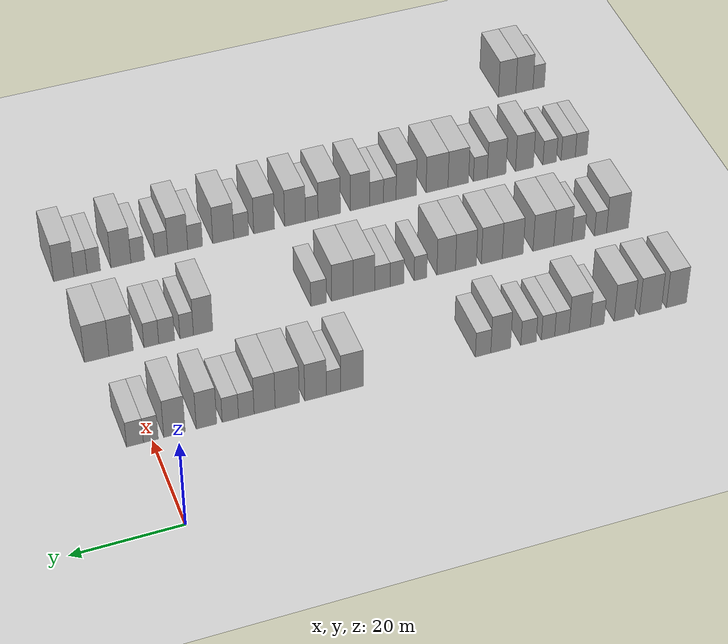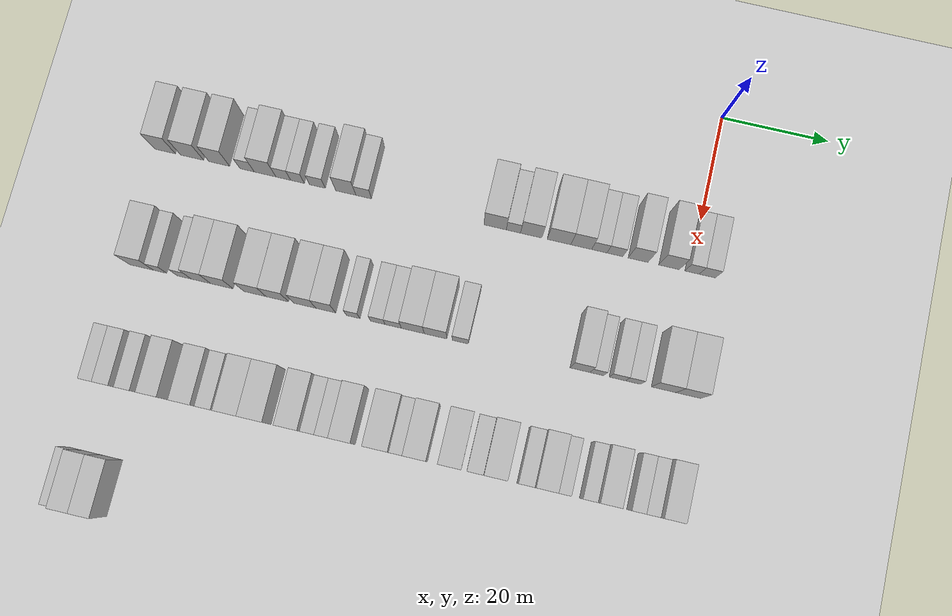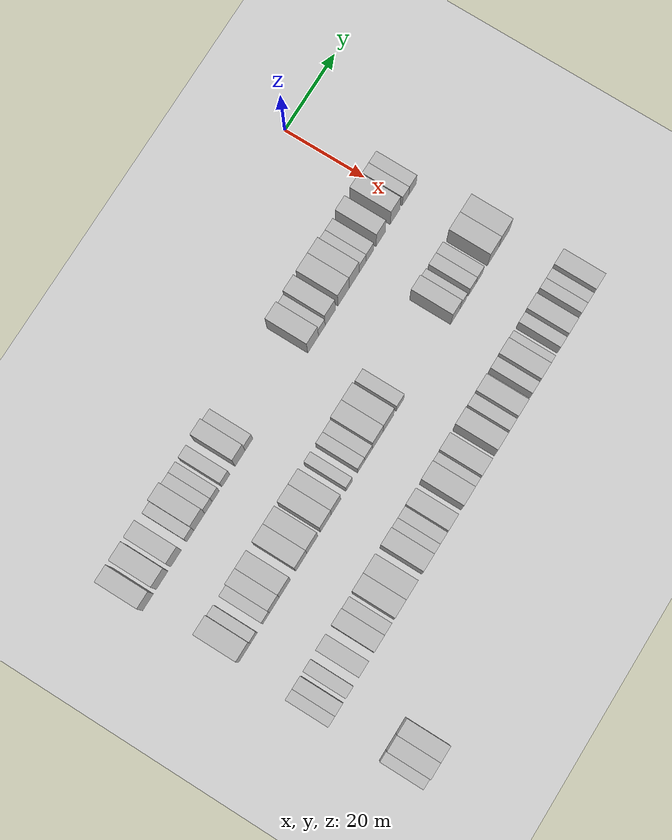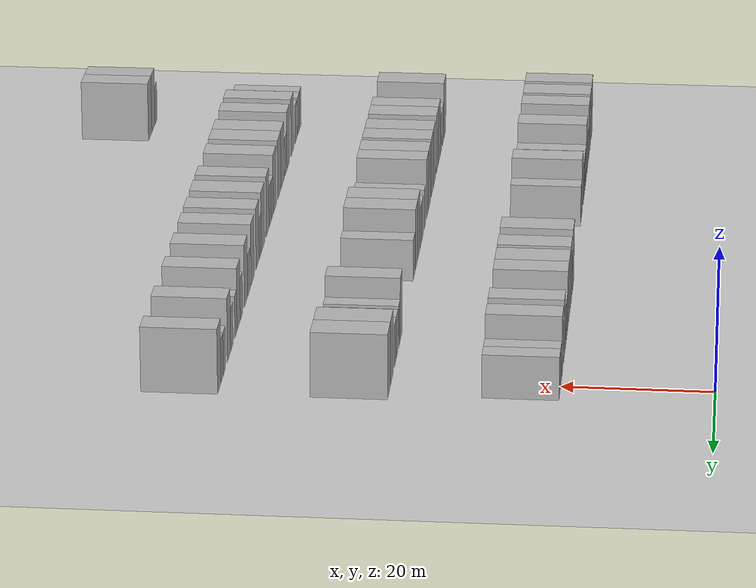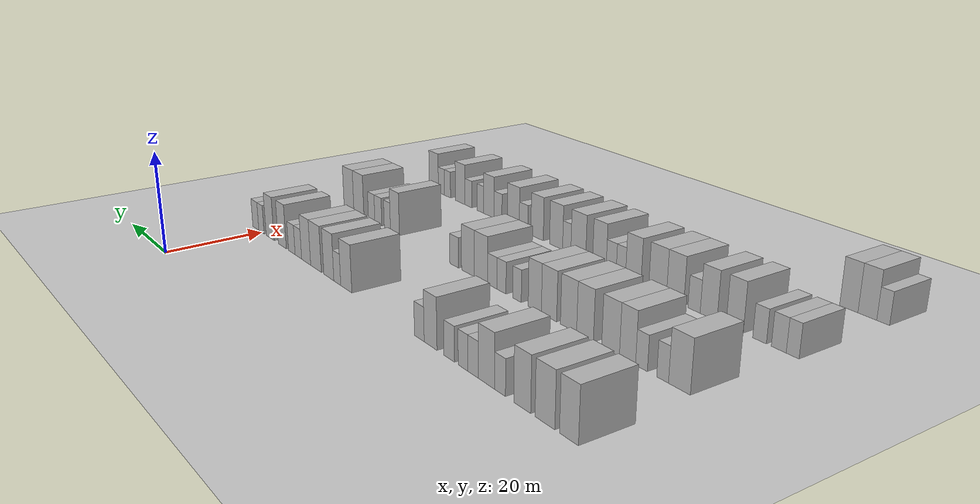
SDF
<sdf version="1.6">
 <world name="default">
  <include><name>ground_plane_1</name><uri>model://HANNAS_ground_plane</uri></include>
  <model name="building_73">
   <static>1</static>
   <pose>25.0000 -98.9124 0 0.000000 0.000000 0.000000</pose>
   <link name="link">
    <pose>0 0 4.50 0 0 0</pose>
    <collision name="collision"><geometry><box><size>10.0000 3.9941 9.0000</size></box></geometry></collision>
    <visual name="visual">
     <cast_shadows>0</cast_shadows>
     <geometry><box><size>10.0000 3.9941 9.0000</size></box></geometry>
     <material>
      <script>
       <uri>model://HANNAS_wall/materials/scripts</uri>
       <uri>model://HANNAS_wall/materials/textures</uri>
       <name>vrc/HANNAS_wall</name>
      </script>
     </material>
    </visual>
   </link>
  </model>
  <model name="building_74">
   <static>1</static>
   <pose>25.0000 -93.7231 0 0.000000 0.000000 0.000000</pose>
   <link name="link">
    <pose>0 0 4.50 0 0 0</pose>
    <collision name="collision"><geometry><box><size>10.0000 4.3844 9.0000</size></box></geometry></collision>
    <visual name="visual">
     <cast_shadows>0</cast_shadows>
     <geometry><box><size>10.0000 4.3844 9.0000</size></box></geometry>
     <material>
      <script>
       <uri>model://HANNAS_wall/materials/scripts</uri>
       <uri>model://HANNAS_wall/materials/textures</uri>
       <name>vrc/HANNAS_wall</name>
      </script>
     </material>
    </visual>
   </link>
  </model>
  <model name="building_75">
   <static>1</static>
   <pose>25.0000 -88.5470 0 0.000000 0.000000 0.000000</pose>
   <link name="link">
    <pose>0 0 4.50 0 0 0</pose>
    <collision name="collision"><geometry><box><size>10.0000 3.9678 9.0000</size></box></geometry></collision>
    <visual name="visual">
     <cast_shadows>0</cast_shadows>
     <geometry><box><size>10.0000 3.9678 9.0000</size></box></geometry>
     <material>
      <script>
       <uri>model://HANNAS_wall/materials/scripts</uri>
       <uri>model://HANNAS_wall/materials/textures</uri>
       <name>vrc/HANNAS_wall</name>
      </script>
     </material>
    </visual>
   </link>
  </model>
  <model name="building_76">
   <static>1</static>
   <pose>25.0000 -83.2048 0 0.000000 0.000000 0.000000</pose>
   <link name="link">
    <pose>0 0 3.00 0 0 0</pose>
    <collision name="collision"><geometry><box><size>10.0000 2.7165 6.0000</size></box></geometry></collision>
    <visual name="visual">
     <cast_shadows>0</cast_shadows>
     <geometry><box><size>10.0000 2.7165 6.0000</size></box></geometry>
     <material>
      <script>
       <uri>model://HANNAS_wall/materials/scripts</uri>
       <uri>model://HANNAS_wall/materials/textures</uri>
       <name>vrc/HANNAS_wall</name>
      </script>
     </material>
    </visual>
   </link>
  </model>
  <model name="building_77">
   <static>1</static>
   <pose>25.0000 -79.7833 0 0.000000 0.000000 0.000000</pose>
   <link name="link">
    <pose>0 0 4.50 0 0 0</pose>
    <collision name="collision"><geometry><box><size>10.0000 4.1265 9.0000</size></box></geometry></collision>
    <visual name="visual">
     <cast_shadows>0</cast_shadows>
     <geometry><box><size>10.0000 4.1265 9.0000</size></box></geometry>
     <material>
      <script>
       <uri>model://HANNAS_wall/materials/scripts</uri>
       <uri>model://HANNAS_wall/materials/textures</uri>
       <name>vrc/HANNAS_wall</name>
      </script>
     </material>
    </visual>
   </link>
  </model>
  <model name="building_78">
   <static>1</static>
   <pose>25.0000 -76.3135 0 0.000000 0.000000 0.000000</pose>
   <link name="link">
    <pose>0 0 3.00 0 0 0</pose>
    <collision name="collision"><geometry><box><size>10.0000 2.8133 6.0000</size></box></geometry></collision>
    <visual name="visual">
     <cast_shadows>0</cast_shadows>
     <geometry><box><size>10.0000 2.8133 6.0000</size></box></geometry>
     <material>
      <script>
       <uri>model://HANNAS_wall/materials/scripts</uri>
       <uri>model://HANNAS_wall/materials/textures</uri>
       <name>vrc/HANNAS_wall</name>
      </script>
     </material>
    </visual>
   </link>
  </model>
  <model name="building_79">
   <static>1</static>
   <pose>25.0000 -73.6182 0 0.000000 0.000000 0.000000</pose>
   <link name="link">
    <pose>0 0 3.00 0 0 0</pose>
    <collision name="collision"><geometry><box><size>10.0000 2.5771 6.0000</size></box></geometry></collision>
    <visual name="visual">
     <cast_shadows>0</cast_shadows>
     <geometry><box><size>10.0000 2.5771 6.0000</size></box></geometry>
     <material>
      <script>
       <uri>model://HANNAS_wall/materials/scripts</uri>
       <uri>model://HANNAS_wall/materials/textures</uri>
       <name>vrc/HANNAS_wall</name>
      </script>
     </material>
    </visual>
   </link>
  </model>
  <model name="building_80">
   <static>1</static>
   <pose>25.0000 -69.8421 0 0.000000 0.000000 0.000000</pose>
   <link name="link">
    <pose>0 0 3.00 0 0 0</pose>
    <collision name="collision"><geometry><box><size>10.0000 2.9751 6.0000</size></box></geometry></collision>
    <visual name="visual">
     <cast_shadows>0</cast_shadows>
     <geometry><box><size>10.0000 2.9751 6.0000</size></box></geometry>
     <material>
      <script>
       <uri>model://HANNAS_wall/materials/scripts</uri>
       <uri>model://HANNAS_wall/materials/textures</uri>
       <name>vrc/HANNAS_wall</name>
      </script>
     </material>
    </visual>
   </link>
  </model>
  <model name="building_81">
   <static>1</static>
   <pose>25.0000 -64.4613 0 0.000000 0.000000 0.000000</pose>
   <link name="link">
    <pose>0 0 4.50 0 0 0</pose>
    <collision name="collision"><geometry><box><size>10.0000 3.7867 9.0000</size></box></geometry></collision>
    <visual name="visual">
     <cast_shadows>0</cast_shadows>
     <geometry><box><size>10.0000 3.7867 9.0000</size></box></geometry>
     <material>
      <script>
       <uri>model://HANNAS_wall/materials/scripts</uri>
       <uri>model://HANNAS_wall/materials/textures</uri>
       <name>vrc/HANNAS_wall</name>
      </script>
     </material>
    </visual>
   </link>
  </model>
  <model name="building_82">
   <static>1</static>
   <pose>25.0000 -61.0921 0 0.000000 0.000000 0.000000</pose>
   <link name="link">
    <pose>0 0 3.00 0 0 0</pose>
    <collision name="collision"><geometry><box><size>10.0000 2.9517 6.0000</size></box></geometry></collision>
    <visual name="visual">
     <cast_shadows>0</cast_shadows>
     <geometry><box><size>10.0000 2.9517 6.0000</size></box></geometry>
     <material>
      <script>
       <uri>model://HANNAS_wall/materials/scripts</uri>
       <uri>model://HANNAS_wall/materials/textures</uri>
       <name>vrc/HANNAS_wall</name>
      </script>
     </material>
    </visual>
   </link>
  </model>
  <model name="building_83">
   <static>1</static>
   <pose>25.0000 -36.3473 0 0.000000 0.000000 0.000000</pose>
   <link name="link">
    <pose>0 0 4.50 0 0 0</pose>
    <collision name="collision"><geometry><box><size>10.0000 4.1793 9.0000</size></box></geometry></collision>
    <visual name="visual">
     <cast_shadows>0</cast_shadows>
     <geometry><box><size>10.0000 4.1793 9.0000</size></box></geometry>
     <material>
      <script>
       <uri>model://HANNAS_wall/materials/scripts</uri>
       <uri>model://HANNAS_wall/materials/textures</uri>
       <name>vrc/HANNAS_wall</name>
      </script>
     </material>
    </visual>
   </link>
  </model>
  <model name="building_84">
   <static>1</static>
   <pose>25.0000 -32.9336 0 0.000000 0.000000 0.000000</pose>
   <link name="link">
    <pose>0 0 3.00 0 0 0</pose>
    <collision name="collision"><geometry><box><size>10.0000 2.6480 6.0000</size></box></geometry></collision>
    <visual name="visual">
     <cast_shadows>0</cast_shadows>
     <geometry><box><size>10.0000 2.6480 6.0000</size></box></geometry>
     <material>
      <script>
       <uri>model://HANNAS_wall/materials/scripts</uri>
       <uri>model://HANNAS_wall/materials/textures</uri>
       <name>vrc/HANNAS_wall</name>
      </script>
     </material>
    </visual>
   </link>
  </model>
  <model name="building_85">
   <static>1</static>
   <pose>25.0000 -29.6168 0 0.000000 0.000000 0.000000</pose>
   <link name="link">
    <pose>0 0 4.50 0 0 0</pose>
    <collision name="collision"><geometry><box><size>10.0000 3.9856 9.0000</size></box></geometry></collision>
    <visual name="visual">
     <cast_shadows>0</cast_shadows>
     <geometry><box><size>10.0000 3.9856 9.0000</size></box></geometry>
     <material>
      <script>
       <uri>model://HANNAS_wall/materials/scripts</uri>
       <uri>model://HANNAS_wall/materials/textures</uri>
       <name>vrc/HANNAS_wall</name>
      </script>
     </material>
    </visual>
   </link>
  </model>
  <model name="building_86">
   <static>1</static>
   <pose>25.0000 -24.4102 0 0.000000 0.000000 0.000000</pose>
   <link name="link">
    <pose>0 0 4.50 0 0 0</pose>
    <collision name="collision"><geometry><box><size>10.0000 4.4278 9.0000</size></box></geometry></collision>
    <visual name="visual">
     <cast_shadows>0</cast_shadows>
     <geometry><box><size>10.0000 4.4278 9.0000</size></box></geometry>
     <material>
      <script>
       <uri>model://HANNAS_wall/materials/scripts</uri>
       <uri>model://HANNAS_wall/materials/textures</uri>
       <name>vrc/HANNAS_wall</name>
      </script>
     </material>
    </visual>
   </link>
  </model>
  <model name="building_87">
   <static>1</static>
   <pose>25.0000 -20.2713 0 0.000000 0.000000 0.000000</pose>
   <link name="link">
    <pose>0 0 4.50 0 0 0</pose>
    <collision name="collision"><geometry><box><size>10.0000 3.8499 9.0000</size></box></geometry></collision>
    <visual name="visual">
     <cast_shadows>0</cast_shadows>
     <geometry><box><size>10.0000 3.8499 9.0000</size></box></geometry>
     <material>
      <script>
       <uri>model://HANNAS_wall/materials/scripts</uri>
       <uri>model://HANNAS_wall/materials/textures</uri>
       <name>vrc/HANNAS_wall</name>
      </script>
     </material>
    </visual>
   </link>
  </model>
  <model name="building_88">
   <static>1</static>
   <pose>25.0000 -16.9237 0 0.000000 0.000000 0.000000</pose>
   <link name="link">
    <pose>0 0 3.00 0 0 0</pose>
    <collision name="collision"><geometry><box><size>10.0000 2.8454 6.0000</size></box></geometry></collision>
    <visual name="visual">
     <cast_shadows>0</cast_shadows>
     <geometry><box><size>10.0000 2.8454 6.0000</size></box></geometry>
     <material>
      <script>
       <uri>model://HANNAS_wall/materials/scripts</uri>
       <uri>model://HANNAS_wall/materials/textures</uri>
       <name>vrc/HANNAS_wall</name>
      </script>
     </material>
    </visual>
   </link>
  </model>
  <model name="building_89">
   <static>1</static>
   <pose>25.0000 -14.0260 0 0.000000 0.000000 0.000000</pose>
   <link name="link">
    <pose>0 0 3.00 0 0 0</pose>
    <collision name="collision"><geometry><box><size>10.0000 2.9500 6.0000</size></box></geometry></collision>
    <visual name="visual">
     <cast_shadows>0</cast_shadows>
     <geometry><box><size>10.0000 2.9500 6.0000</size></box></geometry>
     <material>
      <script>
       <uri>model://HANNAS_wall/materials/scripts</uri>
       <uri>model://HANNAS_wall/materials/textures</uri>
       <name>vrc/HANNAS_wall</name>
      </script>
     </material>
    </visual>
   </link>
  </model>
  <model name="building_90">
   <static>1</static>
   <pose>25.0000 -9.7171 0 0.000000 0.000000 0.000000</pose>
   <link name="link">
    <pose>0 0 4.50 0 0 0</pose>
    <collision name="collision"><geometry><box><size>10.0000 3.6678 9.0000</size></box></geometry></collision>
    <visual name="visual">
     <cast_shadows>0</cast_shadows>
     <geometry><box><size>10.0000 3.6678 9.0000</size></box></geometry>
     <material>
      <script>
       <uri>model://HANNAS_wall/materials/scripts</uri>
       <uri>model://HANNAS_wall/materials/textures</uri>
       <name>vrc/HANNAS_wall</name>
      </script>
     </material>
    </visual>
   </link>
  </model>
  <model name="building_91">
   <static>1</static>
   <pose>25.0000 -3.9689 0 0.000000 0.000000 0.000000</pose>
   <link name="link">
    <pose>0 0 4.50 0 0 0</pose>
    <collision name="collision"><geometry><box><size>10.0000 3.8286 9.0000</size></box></geometry></collision>
    <visual name="visual">
     <cast_shadows>0</cast_shadows>
     <geometry><box><size>10.0000 3.8286 9.0000</size></box></geometry>
     <material>
      <script>
       <uri>model://HANNAS_wall/materials/scripts</uri>
       <uri>model://HANNAS_wall/materials/textures</uri>
       <name>vrc/HANNAS_wall</name>
      </script>
     </material>
    </visual>
   </link>
  </model>
  <model name="building_92">
   <static>1</static>
   <pose>25.0000 0.2656 0 0.000000 0.000000 0.000000</pose>
   <link name="link">
    <pose>0 0 3.00 0 0 0</pose>
    <collision name="collision"><geometry><box><size>10.0000 2.6405 6.0000</size></box></geometry></collision>
    <visual name="visual">
     <cast_shadows>0</cast_shadows>
     <geometry><box><size>10.0000 2.6405 6.0000</size></box></geometry>
     <material>
      <script>
       <uri>model://HANNAS_wall/materials/scripts</uri>
       <uri>model://HANNAS_wall/materials/textures</uri>
       <name>vrc/HANNAS_wall</name>
      </script>
     </material>
    </visual>
   </link>
  </model>
  <model name="building_93">
   <static>1</static>
   <pose>25.0000 3.0814 0 0.000000 0.000000 0.000000</pose>
   <link name="link">
    <pose>0 0 3.00 0 0 0</pose>
    <collision name="collision"><geometry><box><size>10.0000 2.9911 6.0000</size></box></geometry></collision>
    <visual name="visual">
     <cast_shadows>0</cast_shadows>
     <geometry><box><size>10.0000 2.9911 6.0000</size></box></geometry>
     <material>
      <script>
       <uri>model://HANNAS_wall/materials/scripts</uri>
       <uri>model://HANNAS_wall/materials/textures</uri>
       <name>vrc/HANNAS_wall</name>
      </script>
     </material>
    </visual>
   </link>
  </model>
  <model name="building_270">
   <static>1</static>
   <pose>47.0000 -97.0526 0 0.000000 0.000000 0.000000</pose>
   <link name="link">
    <pose>0 0 4.50 0 0 0</pose>
    <collision name="collision"><geometry><box><size>10.0000 4.4656 9.0000</size></box></geometry></collision>
    <visual name="visual">
     <cast_shadows>0</cast_shadows>
     <geometry><box><size>10.0000 4.4656 9.0000</size></box></geometry>
     <material>
      <script>
       <uri>model://HANNAS_wall/materials/scripts</uri>
       <uri>model://HANNAS_wall/materials/textures</uri>
       <name>vrc/HANNAS_wall</name>
      </script>
     </material>
    </visual>
   </link>
  </model>
  <model name="building_271">
   <static>1</static>
   <pose>47.0000 -93.5769 0 0.000000 0.000000 0.000000</pose>
   <link name="link">
    <pose>0 0 3.00 0 0 0</pose>
    <collision name="collision"><geometry><box><size>10.0000 2.4856 6.0000</size></box></geometry></collision>
    <visual name="visual">
     <cast_shadows>0</cast_shadows>
     <geometry><box><size>10.0000 2.4856 6.0000</size></box></geometry>
     <material>
      <script>
       <uri>model://HANNAS_wall/materials/scripts</uri>
       <uri>model://HANNAS_wall/materials/textures</uri>
       <name>vrc/HANNAS_wall</name>
      </script>
     </material>
    </visual>
   </link>
  </model>
  <model name="building_272">
   <static>1</static>
   <pose>47.0000 -89.0248 0 0.000000 0.000000 0.000000</pose>
   <link name="link">
    <pose>0 0 3.00 0 0 0</pose>
    <collision name="collision"><geometry><box><size>10.0000 2.6187 6.0000</size></box></geometry></collision>
    <visual name="visual">
     <cast_shadows>0</cast_shadows>
     <geometry><box><size>10.0000 2.6187 6.0000</size></box></geometry>
     <material>
      <script>
       <uri>model://HANNAS_wall/materials/scripts</uri>
       <uri>model://HANNAS_wall/materials/textures</uri>
       <name>vrc/HANNAS_wall</name>
      </script>
     </material>
    </visual>
   </link>
  </model>
  <model name="building_273">
   <static>1</static>
   <pose>47.0000 -85.8849 0 0.000000 0.000000 0.000000</pose>
   <link name="link">
    <pose>0 0 4.50 0 0 0</pose>
    <collision name="collision"><geometry><box><size>10.0000 3.6610 9.0000</size></box></geometry></collision>
    <visual name="visual">
     <cast_shadows>0</cast_shadows>
     <geometry><box><size>10.0000 3.6610 9.0000</size></box></geometry>
     <material>
      <script>
       <uri>model://HANNAS_wall/materials/scripts</uri>
       <uri>model://HANNAS_wall/materials/textures</uri>
       <name>vrc/HANNAS_wall</name>
      </script>
     </material>
    </visual>
   </link>
  </model>
  <model name="building_274">
   <static>1</static>
   <pose>47.0000 -81.9640 0 0.000000 0.000000 0.000000</pose>
   <link name="link">
    <pose>0 0 4.50 0 0 0</pose>
    <collision name="collision"><geometry><box><size>10.0000 4.1810 9.0000</size></box></geometry></collision>
    <visual name="visual">
     <cast_shadows>0</cast_shadows>
     <geometry><box><size>10.0000 4.1810 9.0000</size></box></geometry>
     <material>
      <script>
       <uri>model://HANNAS_wall/materials/scripts</uri>
       <uri>model://HANNAS_wall/materials/textures</uri>
       <name>vrc/HANNAS_wall</name>
      </script>
     </material>
    </visual>
   </link>
  </model>
  <model name="building_275">
   <static>1</static>
   <pose>47.0000 -75.7859 0 0.000000 0.000000 0.000000</pose>
   <link name="link">
    <pose>0 0 4.50 0 0 0</pose>
    <collision name="collision"><geometry><box><size>10.0000 4.1752 9.0000</size></box></geometry></collision>
    <visual name="visual">
     <cast_shadows>0</cast_shadows>
     <geometry><box><size>10.0000 4.1752 9.0000</size></box></geometry>
     <material>
      <script>
       <uri>model://HANNAS_wall/materials/scripts</uri>
       <uri>model://HANNAS_wall/materials/textures</uri>
       <name>vrc/HANNAS_wall</name>
      </script>
     </material>
    </visual>
   </link>
  </model>
  <model name="building_276">
   <static>1</static>
   <pose>47.0000 -71.6062 0 0.000000 0.000000 0.000000</pose>
   <link name="link">
    <pose>0 0 4.50 0 0 0</pose>
    <collision name="collision"><geometry><box><size>10.0000 4.1840 9.0000</size></box></geometry></collision>
    <visual name="visual">
     <cast_shadows>0</cast_shadows>
     <geometry><box><size>10.0000 4.1840 9.0000</size></box></geometry>
     <material>
      <script>
       <uri>model://HANNAS_wall/materials/scripts</uri>
       <uri>model://HANNAS_wall/materials/textures</uri>
       <name>vrc/HANNAS_wall</name>
      </script>
     </material>
    </visual>
   </link>
  </model>
  <model name="building_277">
   <static>1</static>
   <pose>47.0000 -66.4480 0 0.000000 0.000000 0.000000</pose>
   <link name="link">
    <pose>0 0 4.50 0 0 0</pose>
    <collision name="collision"><geometry><box><size>10.0000 4.1324 9.0000</size></box></geometry></collision>
    <visual name="visual">
     <cast_shadows>0</cast_shadows>
     <geometry><box><size>10.0000 4.1324 9.0000</size></box></geometry>
     <material>
      <script>
       <uri>model://HANNAS_wall/materials/scripts</uri>
       <uri>model://HANNAS_wall/materials/textures</uri>
       <name>vrc/HANNAS_wall</name>
      </script>
     </material>
    </visual>
   </link>
  </model>
  <model name="building_278">
   <static>1</static>
   <pose>47.0000 -62.5482 0 0.000000 0.000000 0.000000</pose>
   <link name="link">
    <pose>0 0 4.50 0 0 0</pose>
    <collision name="collision"><geometry><box><size>10.0000 3.6672 9.0000</size></box></geometry></collision>
    <visual name="visual">
     <cast_shadows>0</cast_shadows>
     <geometry><box><size>10.0000 3.6672 9.0000</size></box></geometry>
     <material>
      <script>
       <uri>model://HANNAS_wall/materials/scripts</uri>
       <uri>model://HANNAS_wall/materials/textures</uri>
       <name>vrc/HANNAS_wall</name>
      </script>
     </material>
    </visual>
   </link>
  </model>
  <model name="building_279">
   <static>1</static>
   <pose>47.0000 -57.4729 0 0.000000 0.000000 0.000000</pose>
   <link name="link">
    <pose>0 0 3.00 0 0 0</pose>
    <collision name="collision"><geometry><box><size>10.0000 2.4835 6.0000</size></box></geometry></collision>
    <visual name="visual">
     <cast_shadows>0</cast_shadows>
     <geometry><box><size>10.0000 2.4835 6.0000</size></box></geometry>
     <material>
      <script>
       <uri>model://HANNAS_wall/materials/scripts</uri>
       <uri>model://HANNAS_wall/materials/textures</uri>
       <name>vrc/HANNAS_wall</name>
      </script>
     </material>
    </visual>
   </link>
  </model>
  <model name="building_280">
   <static>1</static>
   <pose>47.0000 -52.8761 0 0.000000 0.000000 0.000000</pose>
   <link name="link">
    <pose>0 0 3.00 0 0 0</pose>
    <collision name="collision"><geometry><box><size>10.0000 2.7101 6.0000</size></box></geometry></collision>
    <visual name="visual">
     <cast_shadows>0</cast_shadows>
     <geometry><box><size>10.0000 2.7101 6.0000</size></box></geometry>
     <material>
      <script>
       <uri>model://HANNAS_wall/materials/scripts</uri>
       <uri>model://HANNAS_wall/materials/textures</uri>
       <name>vrc/HANNAS_wall</name>
      </script>
     </material>
    </visual>
   </link>
  </model>
  <model name="building_281">
   <static>1</static>
   <pose>47.0000 -50.0372 0 0.000000 0.000000 0.000000</pose>
   <link name="link">
    <pose>0 0 3.00 0 0 0</pose>
    <collision name="collision"><geometry><box><size>10.0000 2.9676 6.0000</size></box></geometry></collision>
    <visual name="visual">
     <cast_shadows>0</cast_shadows>
     <geometry><box><size>10.0000 2.9676 6.0000</size></box></geometry>
     <material>
      <script>
       <uri>model://HANNAS_wall/materials/scripts</uri>
       <uri>model://HANNAS_wall/materials/textures</uri>
       <name>vrc/HANNAS_wall</name>
      </script>
     </material>
    </visual>
   </link>
  </model>
  <model name="building_282">
   <static>1</static>
   <pose>47.0000 -46.4527 0 0.000000 0.000000 0.000000</pose>
   <link name="link">
    <pose>0 0 4.50 0 0 0</pose>
    <collision name="collision"><geometry><box><size>10.0000 4.2015 9.0000</size></box></geometry></collision>
    <visual name="visual">
     <cast_shadows>0</cast_shadows>
     <geometry><box><size>10.0000 4.2015 9.0000</size></box></geometry>
     <material>
      <script>
       <uri>model://HANNAS_wall/materials/scripts</uri>
       <uri>model://HANNAS_wall/materials/textures</uri>
       <name>vrc/HANNAS_wall</name>
      </script>
     </material>
    </visual>
   </link>
  </model>
  <model name="building_283">
   <static>1</static>
   <pose>47.0000 -42.2675 0 0.000000 0.000000 0.000000</pose>
   <link name="link">
    <pose>0 0 4.50 0 0 0</pose>
    <collision name="collision"><geometry><box><size>10.0000 4.1689 9.0000</size></box></geometry></collision>
    <visual name="visual">
     <cast_shadows>0</cast_shadows>
     <geometry><box><size>10.0000 4.1689 9.0000</size></box></geometry>
     <material>
      <script>
       <uri>model://HANNAS_wall/materials/scripts</uri>
       <uri>model://HANNAS_wall/materials/textures</uri>
       <name>vrc/HANNAS_wall</name>
      </script>
     </material>
    </visual>
   </link>
  </model>
  <model name="building_284">
   <static>1</static>
   <pose>47.0000 -37.6888 0 0.000000 0.000000 0.000000</pose>
   <link name="link">
    <pose>0 0 3.00 0 0 0</pose>
    <collision name="collision"><geometry><box><size>10.0000 2.9884 6.0000</size></box></geometry></collision>
    <visual name="visual">
     <cast_shadows>0</cast_shadows>
     <geometry><box><size>10.0000 2.9884 6.0000</size></box></geometry>
     <material>
      <script>
       <uri>model://HANNAS_wall/materials/scripts</uri>
       <uri>model://HANNAS_wall/materials/textures</uri>
       <name>vrc/HANNAS_wall</name>
      </script>
     </material>
    </visual>
   </link>
  </model>
  <model name="building_285">
   <static>1</static>
   <pose>47.0000 -15.7673 0 0.000000 0.000000 0.000000</pose>
   <link name="link">
    <pose>0 0 4.50 0 0 0</pose>
    <collision name="collision"><geometry><box><size>10.0000 3.6182 9.0000</size></box></geometry></collision>
    <visual name="visual">
     <cast_shadows>0</cast_shadows>
     <geometry><box><size>10.0000 3.6182 9.0000</size></box></geometry>
     <material>
      <script>
       <uri>model://HANNAS_wall/materials/scripts</uri>
       <uri>model://HANNAS_wall/materials/textures</uri>
       <name>vrc/HANNAS_wall</name>
      </script>
     </material>
    </visual>
   </link>
  </model>
  <model name="building_286">
   <static>1</static>
   <pose>47.0000 -12.6986 0 0.000000 0.000000 0.000000</pose>
   <link name="link">
    <pose>0 0 3.00 0 0 0</pose>
    <collision name="collision"><geometry><box><size>10.0000 2.5190 6.0000</size></box></geometry></collision>
    <visual name="visual">
     <cast_shadows>0</cast_shadows>
     <geometry><box><size>10.0000 2.5190 6.0000</size></box></geometry>
     <material>
      <script>
       <uri>model://HANNAS_wall/materials/scripts</uri>
       <uri>model://HANNAS_wall/materials/textures</uri>
       <name>vrc/HANNAS_wall</name>
      </script>
     </material>
    </visual>
   </link>
  </model>
  <model name="building_287">
   <static>1</static>
   <pose>47.0000 -8.9661 0 0.000000 0.000000 0.000000</pose>
   <link name="link">
    <pose>0 0 3.00 0 0 0</pose>
    <collision name="collision"><geometry><box><size>10.0000 2.9461 6.0000</size></box></geometry></collision>
    <visual name="visual">
     <cast_shadows>0</cast_shadows>
     <geometry><box><size>10.0000 2.9461 6.0000</size></box></geometry>
     <material>
      <script>
       <uri>model://HANNAS_wall/materials/scripts</uri>
       <uri>model://HANNAS_wall/materials/textures</uri>
       <name>vrc/HANNAS_wall</name>
      </script>
     </material>
    </visual>
   </link>
  </model>
  <model name="building_288">
   <static>1</static>
   <pose>47.0000 -6.1221 0 0.000000 0.000000 0.000000</pose>
   <link name="link">
    <pose>0 0 3.00 0 0 0</pose>
    <collision name="collision"><geometry><box><size>10.0000 2.7419 6.0000</size></box></geometry></collision>
    <visual name="visual">
     <cast_shadows>0</cast_shadows>
     <geometry><box><size>10.0000 2.7419 6.0000</size></box></geometry>
     <material>
      <script>
       <uri>model://HANNAS_wall/materials/scripts</uri>
       <uri>model://HANNAS_wall/materials/textures</uri>
       <name>vrc/HANNAS_wall</name>
      </script>
     </material>
    </visual>
   </link>
  </model>
  <model name="building_289">
   <static>1</static>
   <pose>47.0000 -0.5229 0 0.000000 0.000000 0.000000</pose>
   <link name="link">
    <pose>0 0 4.50 0 0 0</pose>
    <collision name="collision"><geometry><box><size>10.0000 4.4564 9.0000</size></box></geometry></collision>
    <visual name="visual">
     <cast_shadows>0</cast_shadows>
     <geometry><box><size>10.0000 4.4564 9.0000</size></box></geometry>
     <material>
      <script>
       <uri>model://HANNAS_wall/materials/scripts</uri>
       <uri>model://HANNAS_wall/materials/textures</uri>
       <name>vrc/HANNAS_wall</name>
      </script>
     </material>
    </visual>
   </link>
  </model>
  <model name="building_290">
   <static>1</static>
   <pose>47.0000 3.9551 0 0.000000 0.000000 0.000000</pose>
   <link name="link">
    <pose>0 0 4.50 0 0 0</pose>
    <collision name="collision"><geometry><box><size>10.0000 4.4997 9.0000</size></box></geometry></collision>
    <visual name="visual">
     <cast_shadows>0</cast_shadows>
     <geometry><box><size>10.0000 4.4997 9.0000</size></box></geometry>
     <material>
      <script>
       <uri>model://HANNAS_wall/materials/scripts</uri>
       <uri>model://HANNAS_wall/materials/textures</uri>
       <name>vrc/HANNAS_wall</name>
      </script>
     </material>
    </visual>
   </link>
  </model>
  <model name="building_450">
   <static>1</static>
   <pose>69.0000 -99.1850 0 0.000000 0.000000 0.000000</pose>
   <link name="link">
    <pose>0 0 3.00 0 0 0</pose>
    <collision name="collision"><geometry><box><size>10.0000 2.5046 6.0000</size></box></geometry></collision>
    <visual name="visual">
     <cast_shadows>0</cast_shadows>
     <geometry><box><size>10.0000 2.5046 6.0000</size></box></geometry>
     <material>
      <script>
       <uri>model://HANNAS_wall/materials/scripts</uri>
       <uri>model://HANNAS_wall/materials/textures</uri>
       <name>vrc/HANNAS_wall</name>
      </script>
     </material>
    </visual>
   </link>
  </model>
  <model name="building_451">
   <static>1</static>
   <pose>69.0000 -96.4423 0 0.000000 0.000000 0.000000</pose>
   <link name="link">
    <pose>0 0 3.00 0 0 0</pose>
    <collision name="collision"><geometry><box><size>10.0000 2.9808 6.0000</size></box></geometry></collision>
    <visual name="visual">
     <cast_shadows>0</cast_shadows>
     <geometry><box><size>10.0000 2.9808 6.0000</size></box></geometry>
     <material>
      <script>
       <uri>model://HANNAS_wall/materials/scripts</uri>
       <uri>model://HANNAS_wall/materials/textures</uri>
       <name>vrc/HANNAS_wall</name>
      </script>
     </material>
    </visual>
   </link>
  </model>
  <model name="building_452">
   <static>1</static>
   <pose>69.0000 -92.5330 0 0.000000 0.000000 0.000000</pose>
   <link name="link">
    <pose>0 0 3.00 0 0 0</pose>
    <collision name="collision"><geometry><box><size>10.0000 2.8380 6.0000</size></box></geometry></collision>
    <visual name="visual">
     <cast_shadows>0</cast_shadows>
     <geometry><box><size>10.0000 2.8380 6.0000</size></box></geometry>
     <material>
      <script>
       <uri>model://HANNAS_wall/materials/scripts</uri>
       <uri>model://HANNAS_wall/materials/textures</uri>
       <name>vrc/HANNAS_wall</name>
      </script>
     </material>
    </visual>
   </link>
  </model>
  <model name="building_453">
   <static>1</static>
   <pose>69.0000 -87.2492 0 0.000000 0.000000 0.000000</pose>
   <link name="link">
    <pose>0 0 4.50 0 0 0</pose>
    <collision name="collision"><geometry><box><size>10.0000 3.7297 9.0000</size></box></geometry></collision>
    <visual name="visual">
     <cast_shadows>0</cast_shadows>
     <geometry><box><size>10.0000 3.7297 9.0000</size></box></geometry>
     <material>
      <script>
       <uri>model://HANNAS_wall/materials/scripts</uri>
       <uri>model://HANNAS_wall/materials/textures</uri>
       <name>vrc/HANNAS_wall</name>
      </script>
     </material>
    </visual>
   </link>
  </model>
  <model name="building_454">
   <static>1</static>
   <pose>69.0000 -81.4517 0 0.000000 0.000000 0.000000</pose>
   <link name="link">
    <pose>0 0 4.50 0 0 0</pose>
    <collision name="collision"><geometry><box><size>10.0000 3.8652 9.0000</size></box></geometry></collision>
    <visual name="visual">
     <cast_shadows>0</cast_shadows>
     <geometry><box><size>10.0000 3.8652 9.0000</size></box></geometry>
     <material>
      <script>
       <uri>model://HANNAS_wall/materials/scripts</uri>
       <uri>model://HANNAS_wall/materials/textures</uri>
       <name>vrc/HANNAS_wall</name>
      </script>
     </material>
    </visual>
   </link>
  </model>
  <model name="building_455">
   <static>1</static>
   <pose>69.0000 -78.0833 0 0.000000 0.000000 0.000000</pose>
   <link name="link">
    <pose>0 0 3.00 0 0 0</pose>
    <collision name="collision"><geometry><box><size>10.0000 2.8718 6.0000</size></box></geometry></collision>
    <visual name="visual">
     <cast_shadows>0</cast_shadows>
     <geometry><box><size>10.0000 2.8718 6.0000</size></box></geometry>
     <material>
      <script>
       <uri>model://HANNAS_wall/materials/scripts</uri>
       <uri>model://HANNAS_wall/materials/textures</uri>
       <name>vrc/HANNAS_wall</name>
      </script>
     </material>
    </visual>
   </link>
  </model>
  <model name="building_456">
   <static>1</static>
   <pose>69.0000 -73.5311 0 0.000000 0.000000 0.000000</pose>
   <link name="link">
    <pose>0 0 4.50 0 0 0</pose>
    <collision name="collision"><geometry><box><size>10.0000 4.2324 9.0000</size></box></geometry></collision>
    <visual name="visual">
     <cast_shadows>0</cast_shadows>
     <geometry><box><size>10.0000 4.2324 9.0000</size></box></geometry>
     <material>
      <script>
       <uri>model://HANNAS_wall/materials/scripts</uri>
       <uri>model://HANNAS_wall/materials/textures</uri>
       <name>vrc/HANNAS_wall</name>
      </script>
     </material>
    </visual>
   </link>
  </model>
  <model name="building_457">
   <static>1</static>
   <pose>69.0000 -69.1681 0 0.000000 0.000000 0.000000</pose>
   <link name="link">
    <pose>0 0 4.50 0 0 0</pose>
    <collision name="collision"><geometry><box><size>10.0000 4.4937 9.0000</size></box></geometry></collision>
    <visual name="visual">
     <cast_shadows>0</cast_shadows>
     <geometry><box><size>10.0000 4.4937 9.0000</size></box></geometry>
     <material>
      <script>
       <uri>model://HANNAS_wall/materials/scripts</uri>
       <uri>model://HANNAS_wall/materials/textures</uri>
       <name>vrc/HANNAS_wall</name>
      </script>
     </material>
    </visual>
   </link>
  </model>
  <model name="building_458">
   <static>1</static>
   <pose>69.0000 -62.8634 0 0.000000 0.000000 0.000000</pose>
   <link name="link">
    <pose>0 0 4.50 0 0 0</pose>
    <collision name="collision"><geometry><box><size>10.0000 4.1157 9.0000</size></box></geometry></collision>
    <visual name="visual">
     <cast_shadows>0</cast_shadows>
     <geometry><box><size>10.0000 4.1157 9.0000</size></box></geometry>
     <material>
      <script>
       <uri>model://HANNAS_wall/materials/scripts</uri>
       <uri>model://HANNAS_wall/materials/textures</uri>
       <name>vrc/HANNAS_wall</name>
      </script>
     </material>
    </visual>
   </link>
  </model>
  <model name="building_459">
   <static>1</static>
   <pose>69.0000 -59.5353 0 0.000000 0.000000 0.000000</pose>
   <link name="link">
    <pose>0 0 3.00 0 0 0</pose>
    <collision name="collision"><geometry><box><size>10.0000 2.5404 6.0000</size></box></geometry></collision>
    <visual name="visual">
     <cast_shadows>0</cast_shadows>
     <geometry><box><size>10.0000 2.5404 6.0000</size></box></geometry>
     <material>
      <script>
       <uri>model://HANNAS_wall/materials/scripts</uri>
       <uri>model://HANNAS_wall/materials/textures</uri>
       <name>vrc/HANNAS_wall</name>
      </script>
     </material>
    </visual>
   </link>
  </model>
  <model name="building_460">
   <static>1</static>
   <pose>69.0000 -56.8647 0 0.000000 0.000000 0.000000</pose>
   <link name="link">
    <pose>0 0 3.00 0 0 0</pose>
    <collision name="collision"><geometry><box><size>10.0000 2.8009 6.0000</size></box></geometry></collision>
    <visual name="visual">
     <cast_shadows>0</cast_shadows>
     <geometry><box><size>10.0000 2.8009 6.0000</size></box></geometry>
     <material>
      <script>
       <uri>model://HANNAS_wall/materials/scripts</uri>
       <uri>model://HANNAS_wall/materials/textures</uri>
       <name>vrc/HANNAS_wall</name>
      </script>
     </material>
    </visual>
   </link>
  </model>
  <model name="building_461">
   <static>1</static>
   <pose>69.0000 -53.5157 0 0.000000 0.000000 0.000000</pose>
   <link name="link">
    <pose>0 0 4.50 0 0 0</pose>
    <collision name="collision"><geometry><box><size>10.0000 3.8971 9.0000</size></box></geometry></collision>
    <visual name="visual">
     <cast_shadows>0</cast_shadows>
     <geometry><box><size>10.0000 3.8971 9.0000</size></box></geometry>
     <material>
      <script>
       <uri>model://HANNAS_wall/materials/scripts</uri>
       <uri>model://HANNAS_wall/materials/textures</uri>
       <name>vrc/HANNAS_wall</name>
      </script>
     </material>
    </visual>
   </link>
  </model>
  <model name="building_462">
   <static>1</static>
   <pose>69.0000 -47.3378 0 0.000000 0.000000 0.000000</pose>
   <link name="link">
    <pose>0 0 4.50 0 0 0</pose>
    <collision name="collision"><geometry><box><size>10.0000 4.4588 9.0000</size></box></geometry></collision>
    <visual name="visual">
     <cast_shadows>0</cast_shadows>
     <geometry><box><size>10.0000 4.4588 9.0000</size></box></geometry>
     <material>
      <script>
       <uri>model://HANNAS_wall/materials/scripts</uri>
       <uri>model://HANNAS_wall/materials/textures</uri>
       <name>vrc/HANNAS_wall</name>
      </script>
     </material>
    </visual>
   </link>
  </model>
  <model name="building_463">
   <static>1</static>
   <pose>69.0000 -43.8432 0 0.000000 0.000000 0.000000</pose>
   <link name="link">
    <pose>0 0 3.00 0 0 0</pose>
    <collision name="collision"><geometry><box><size>10.0000 2.5304 6.0000</size></box></geometry></collision>
    <visual name="visual">
     <cast_shadows>0</cast_shadows>
     <geometry><box><size>10.0000 2.5304 6.0000</size></box></geometry>
     <material>
      <script>
       <uri>model://HANNAS_wall/materials/scripts</uri>
       <uri>model://HANNAS_wall/materials/textures</uri>
       <name>vrc/HANNAS_wall</name>
      </script>
     </material>
    </visual>
   </link>
  </model>
  <model name="building_464">
   <static>1</static>
   <pose>69.0000 -40.5173 0 0.000000 0.000000 0.000000</pose>
   <link name="link">
    <pose>0 0 4.50 0 0 0</pose>
    <collision name="collision"><geometry><box><size>10.0000 4.1213 9.0000</size></box></geometry></collision>
    <visual name="visual">
     <cast_shadows>0</cast_shadows>
     <geometry><box><size>10.0000 4.1213 9.0000</size></box></geometry>
     <material>
      <script>
       <uri>model://HANNAS_wall/materials/scripts</uri>
       <uri>model://HANNAS_wall/materials/textures</uri>
       <name>vrc/HANNAS_wall</name>
      </script>
     </material>
    </visual>
   </link>
  </model>
  <model name="building_465">
   <static>1</static>
   <pose>69.0000 -34.4014 0 0.000000 0.000000 0.000000</pose>
   <link name="link">
    <pose>0 0 4.50 0 0 0</pose>
    <collision name="collision"><geometry><box><size>10.0000 4.1105 9.0000</size></box></geometry></collision>
    <visual name="visual">
     <cast_shadows>0</cast_shadows>
     <geometry><box><size>10.0000 4.1105 9.0000</size></box></geometry>
     <material>
      <script>
       <uri>model://HANNAS_wall/materials/scripts</uri>
       <uri>model://HANNAS_wall/materials/textures</uri>
       <name>vrc/HANNAS_wall</name>
      </script>
     </material>
    </visual>
   </link>
  </model>
  <model name="building_466">
   <static>1</static>
   <pose>69.0000 -29.8808 0 0.000000 0.000000 0.000000</pose>
   <link name="link">
    <pose>0 0 3.00 0 0 0</pose>
    <collision name="collision"><geometry><box><size>10.0000 2.9308 6.0000</size></box></geometry></collision>
    <visual name="visual">
     <cast_shadows>0</cast_shadows>
     <geometry><box><size>10.0000 2.9308 6.0000</size></box></geometry>
     <material>
      <script>
       <uri>model://HANNAS_wall/materials/scripts</uri>
       <uri>model://HANNAS_wall/materials/textures</uri>
       <name>vrc/HANNAS_wall</name>
      </script>
     </material>
    </visual>
   </link>
  </model>
  <model name="building_467">
   <static>1</static>
   <pose>69.0000 -26.3653 0 0.000000 0.000000 0.000000</pose>
   <link name="link">
    <pose>0 0 4.50 0 0 0</pose>
    <collision name="collision"><geometry><box><size>10.0000 4.1001 9.0000</size></box></geometry></collision>
    <visual name="visual">
     <cast_shadows>0</cast_shadows>
     <geometry><box><size>10.0000 4.1001 9.0000</size></box></geometry>
     <material>
      <script>
       <uri>model://HANNAS_wall/materials/scripts</uri>
       <uri>model://HANNAS_wall/materials/textures</uri>
       <name>vrc/HANNAS_wall</name>
      </script>
     </material>
    </visual>
   </link>
  </model>
  <model name="building_468">
   <static>1</static>
   <pose>69.0000 -20.8801 0 0.000000 0.000000 0.000000</pose>
   <link name="link">
    <pose>0 0 3.00 0 0 0</pose>
    <collision name="collision"><geometry><box><size>10.0000 2.8703 6.0000</size></box></geometry></collision>
    <visual name="visual">
     <cast_shadows>0</cast_shadows>
     <geometry><box><size>10.0000 2.8703 6.0000</size></box></geometry>
     <material>
      <script>
       <uri>model://HANNAS_wall/materials/scripts</uri>
       <uri>model://HANNAS_wall/materials/textures</uri>
       <name>vrc/HANNAS_wall</name>
      </script>
     </material>
    </visual>
   </link>
  </model>
  <model name="building_469">
   <static>1</static>
   <pose>69.0000 -17.5111 0 0.000000 0.000000 0.000000</pose>
   <link name="link">
    <pose>0 0 4.50 0 0 0</pose>
    <collision name="collision"><geometry><box><size>10.0000 3.8676 9.0000</size></box></geometry></collision>
    <visual name="visual">
     <cast_shadows>0</cast_shadows>
     <geometry><box><size>10.0000 3.8676 9.0000</size></box></geometry>
     <material>
      <script>
       <uri>model://HANNAS_wall/materials/scripts</uri>
       <uri>model://HANNAS_wall/materials/textures</uri>
       <name>vrc/HANNAS_wall</name>
      </script>
     </material>
    </visual>
   </link>
  </model>
  <model name="building_470">
   <static>1</static>
   <pose>69.0000 -14.3325 0 0.000000 0.000000 0.000000</pose>
   <link name="link">
    <pose>0 0 3.00 0 0 0</pose>
    <collision name="collision"><geometry><box><size>10.0000 2.4897 6.0000</size></box></geometry></collision>
    <visual name="visual">
     <cast_shadows>0</cast_shadows>
     <geometry><box><size>10.0000 2.4897 6.0000</size></box></geometry>
     <material>
      <script>
       <uri>model://HANNAS_wall/materials/scripts</uri>
       <uri>model://HANNAS_wall/materials/textures</uri>
       <name>vrc/HANNAS_wall</name>
      </script>
     </material>
    </visual>
   </link>
  </model>
  <model name="building_471">
   <static>1</static>
   <pose>69.0000 -9.7826 0 0.000000 0.000000 0.000000</pose>
   <link name="link">
    <pose>0 0 3.00 0 0 0</pose>
    <collision name="collision"><geometry><box><size>10.0000 2.6099 6.0000</size></box></geometry></collision>
    <visual name="visual">
     <cast_shadows>0</cast_shadows>
     <geometry><box><size>10.0000 2.6099 6.0000</size></box></geometry>
     <material>
      <script>
       <uri>model://HANNAS_wall/materials/scripts</uri>
       <uri>model://HANNAS_wall/materials/textures</uri>
       <name>vrc/HANNAS_wall</name>
      </script>
     </material>
    </visual>
   </link>
  </model>
  <model name="building_472">
   <static>1</static>
   <pose>69.0000 -6.5601 0 0.000000 0.000000 0.000000</pose>
   <link name="link">
    <pose>0 0 4.50 0 0 0</pose>
    <collision name="collision"><geometry><box><size>10.0000 3.8352 9.0000</size></box></geometry></collision>
    <visual name="visual">
     <cast_shadows>0</cast_shadows>
     <geometry><box><size>10.0000 3.8352 9.0000</size></box></geometry>
     <material>
      <script>
       <uri>model://HANNAS_wall/materials/scripts</uri>
       <uri>model://HANNAS_wall/materials/textures</uri>
       <name>vrc/HANNAS_wall</name>
      </script>
     </material>
    </visual>
   </link>
  </model>
  <model name="building_473">
   <static>1</static>
   <pose>69.0000 -1.3701 0 0.000000 0.000000 0.000000</pose>
   <link name="link">
    <pose>0 0 3.00 0 0 0</pose>
    <collision name="collision"><geometry><box><size>10.0000 2.5448 6.0000</size></box></geometry></collision>
    <visual name="visual">
     <cast_shadows>0</cast_shadows>
     <geometry><box><size>10.0000 2.5448 6.0000</size></box></geometry>
     <material>
      <script>
       <uri>model://HANNAS_wall/materials/scripts</uri>
       <uri>model://HANNAS_wall/materials/textures</uri>
       <name>vrc/HANNAS_wall</name>
      </script>
     </material>
    </visual>
   </link>
  </model>
  <model name="building_474">
   <static>1</static>
   <pose>69.0000 1.1423 0 0.000000 0.000000 0.000000</pose>
   <link name="link">
    <pose>0 0 3.00 0 0 0</pose>
    <collision name="collision"><geometry><box><size>10.0000 2.4800 6.0000</size></box></geometry></collision>
    <visual name="visual">
     <cast_shadows>0</cast_shadows>
     <geometry><box><size>10.0000 2.4800 6.0000</size></box></geometry>
     <material>
      <script>
       <uri>model://HANNAS_wall/materials/scripts</uri>
       <uri>model://HANNAS_wall/materials/textures</uri>
       <name>vrc/HANNAS_wall</name>
      </script>
     </material>
    </visual>
   </link>
  </model>
  <model name="building_475">
   <static>1</static>
   <pose>69.0000 4.3077 0 0.000000 0.000000 0.000000</pose>
   <link name="link">
    <pose>0 0 4.50 0 0 0</pose>
    <collision name="collision"><geometry><box><size>10.0000 3.8508 9.0000</size></box></geometry></collision>
    <visual name="visual">
     <cast_shadows>0</cast_shadows>
     <geometry><box><size>10.0000 3.8508 9.0000</size></box></geometry>
     <material>
      <script>
       <uri>model://HANNAS_wall/materials/scripts</uri>
       <uri>model://HANNAS_wall/materials/textures</uri>
       <name>vrc/HANNAS_wall</name>
      </script>
     </material>
    </visual>
   </link>
  </model>
  <model name="building_640">
   <static>1</static>
   <pose>91.0000 -99.4552 0 0.000000 0.000000 0.000000</pose>
   <link name="link">
    <pose>0 0 3.00 0 0 0</pose>
    <collision name="collision"><geometry><box><size>10.0000 2.4798 6.0000</size></box></geometry></collision>
    <visual name="visual">
     <cast_shadows>0</cast_shadows>
     <geometry><box><size>10.0000 2.4798 6.0000</size></box></geometry>
     <material>
      <script>
       <uri>model://HANNAS_wall/materials/scripts</uri>
       <uri>model://HANNAS_wall/materials/textures</uri>
       <name>vrc/HANNAS_wall</name>
      </script>
     </material>
    </visual>
   </link>
  </model>
  <model name="building_641">
   <static>1</static>
   <pose>91.0000 -96.3520 0 0.000000 0.000000 0.000000</pose>
   <link name="link">
    <pose>0 0 4.50 0 0 0</pose>
    <collision name="collision"><geometry><box><size>10.0000 3.7266 9.0000</size></box></geometry></collision>
    <visual name="visual">
     <cast_shadows>0</cast_shadows>
     <geometry><box><size>10.0000 3.7266 9.0000</size></box></geometry>
     <material>
      <script>
       <uri>model://HANNAS_wall/materials/scripts</uri>
       <uri>model://HANNAS_wall/materials/textures</uri>
       <name>vrc/HANNAS_wall</name>
      </script>
     </material>
    </visual>
   </link>
  </model>
  <model name="building_642">
   <static>1</static>
   <pose>91.0000 -92.6185 0 0.000000 0.000000 0.000000</pose>
   <link name="link">
    <pose>0 0 4.50 0 0 0</pose>
    <collision name="collision"><geometry><box><size>10.0000 3.7404 9.0000</size></box></geometry></collision>
    <visual name="visual">
     <cast_shadows>0</cast_shadows>
     <geometry><box><size>10.0000 3.7404 9.0000</size></box></geometry>
     <material>
      <script>
       <uri>model://HANNAS_wall/materials/scripts</uri>
       <uri>model://HANNAS_wall/materials/textures</uri>
       <name>vrc/HANNAS_wall</name>
      </script>
     </material>
    </visual>
   </link>
  </model>
 </world>
</sdf>
